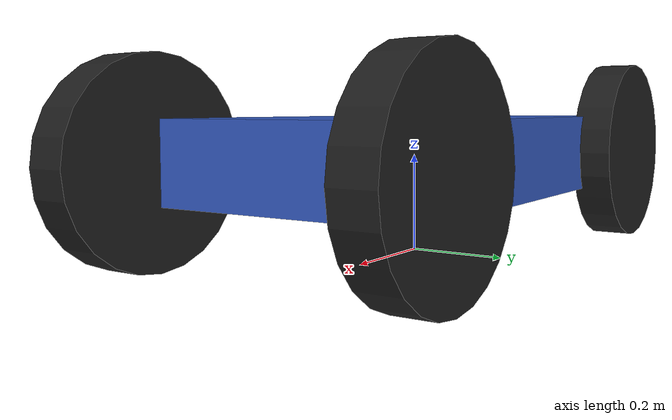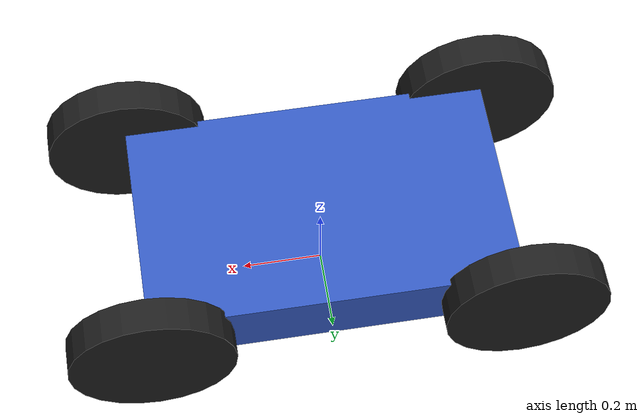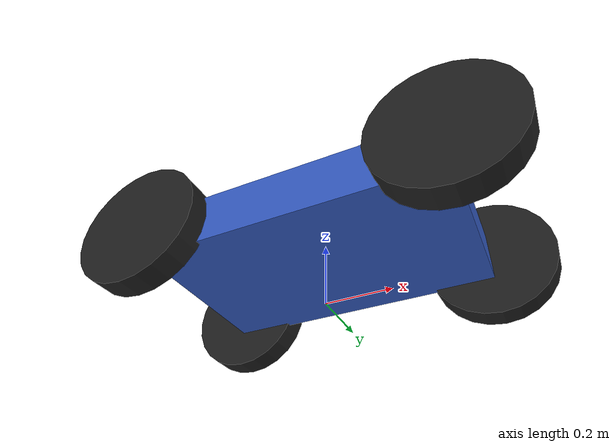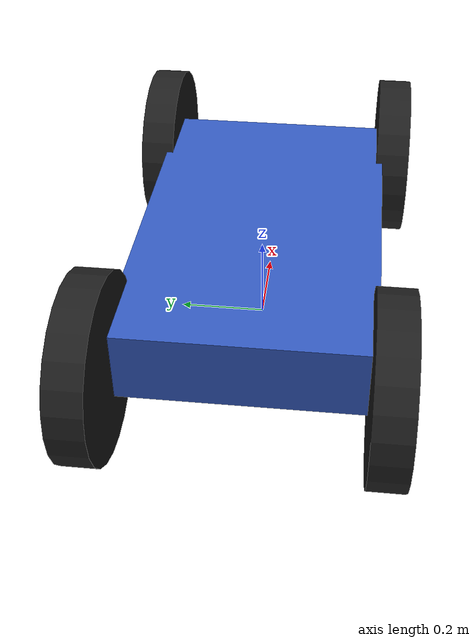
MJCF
<mujoco model="rolling_4s">
  <compiler angle="radian" inertiafromgeom="false"/>
  <option timestep="0.001" gravity="0 0 -9.81" integrator="implicitfast" cone="pyramidal" jacobian="dense"/>
  <size memory="64M"/>
  <default>
    <joint damping="0.05" armature="0.001"/>
    <geom condim="4" friction="0.8 0.01 0.001" solref="0.01 1" solimp="0.9 0.95 0.001"/>
  </default>
  <worldbody>
    <body name="chassis" pos="0 0 0.2">
      <freejoint name="root"/>
      <inertial pos="0 0 0.08" mass="18" diaginertia="0.75 1.35 1.75"/>
      <geom name="chassis_visual" type="box" size="0.45 0.275 0.08" contype="0" conaffinity="0"
            rgba="0.2 0.35 0.75 1"/>
      <geom name="chassis_collision" type="box" size="0.36 0.20 0.06" rgba="0.2 0.35 0.75 0"/>

      <body name="front_left_knuckle" pos="0.45 0.3 0">
        <joint name="front_left_steer" type="hinge" axis="0 0 1" damping="0.001" limited="true"
               range="-3.141592653589793 3.141592653589793"/>
        <inertial pos="0 0 0" mass="0.3" diaginertia="0.002 0.002 0.002"/>
        <body name="front_left_wheel">
          <joint name="front_left_drive" type="hinge" axis="0 1 0" damping="0.05" limited="false"/>
          <inertial pos="0 0 0" mass="1" diaginertia="0.021 0.040 0.021"/>
          <geom name="front_left_wheel_collision" type="cylinder" size="0.2 0.04"
                quat="0.7071067811865476 0.7071067811865476 0 0" rgba="0.12 0.12 0.12 1"/>
        </body>
      </body>

      <body name="front_right_knuckle" pos="0.45 -0.3 0">
        <joint name="front_right_steer" type="hinge" axis="0 0 1" damping="0.001" limited="true"
               range="-3.141592653589793 3.141592653589793"/>
        <inertial pos="0 0 0" mass="0.3" diaginertia="0.002 0.002 0.002"/>
        <body name="front_right_wheel">
          <joint name="front_right_drive" type="hinge" axis="0 1 0" damping="0.05" limited="false"/>
          <inertial pos="0 0 0" mass="1" diaginertia="0.021 0.040 0.021"/>
          <geom name="front_right_wheel_collision" type="cylinder" size="0.2 0.04"
                quat="0.7071067811865476 0.7071067811865476 0 0" rgba="0.12 0.12 0.12 1"/>
        </body>
      </body>

      <body name="rear_left_knuckle" pos="-0.45 0.3 0">
        <joint name="rear_left_steer" type="hinge" axis="0 0 1" damping="0.001" limited="true"
               range="-3.141592653589793 3.141592653589793"/>
        <inertial pos="0 0 0" mass="0.3" diaginertia="0.002 0.002 0.002"/>
        <body name="rear_left_wheel">
          <joint name="rear_left_drive" type="hinge" axis="0 1 0" damping="0.05" limited="false"/>
          <inertial pos="0 0 0" mass="1" diaginertia="0.021 0.040 0.021"/>
          <geom name="rear_left_wheel_collision" type="cylinder" size="0.2 0.04"
                quat="0.7071067811865476 0.7071067811865476 0 0" rgba="0.12 0.12 0.12 1"/>
        </body>
      </body>

      <body name="rear_right_knuckle" pos="-0.45 -0.3 0">
        <joint name="rear_right_steer" type="hinge" axis="0 0 1" damping="0.001" limited="true"
               range="-3.141592653589793 3.141592653589793"/>
        <inertial pos="0 0 0" mass="0.3" diaginertia="0.002 0.002 0.002"/>
        <body name="rear_right_wheel">
          <joint name="rear_right_drive" type="hinge" axis="0 1 0" damping="0.05" limited="false"/>
          <inertial pos="0 0 0" mass="1" diaginertia="0.021 0.040 0.021"/>
          <geom name="rear_right_wheel_collision" type="cylinder" size="0.2 0.04"
                quat="0.7071067811865476 0.7071067811865476 0 0" rgba="0.12 0.12 0.12 1"/>
        </body>
      </body>
    </body>
  </worldbody>
  <actuator>
    <motor name="front_left_steer_motor" joint="front_left_steer" gear="1" ctrllimited="true" ctrlrange="-25 25"/>
    <motor name="front_left_drive_motor" joint="front_left_drive" gear="1" ctrllimited="true" ctrlrange="-35 35"/>
    <motor name="front_right_steer_motor" joint="front_right_steer" gear="1" ctrllimited="true" ctrlrange="-25 25"/>
    <motor name="front_right_drive_motor" joint="front_right_drive" gear="1" ctrllimited="true" ctrlrange="-35 35"/>
    <motor name="rear_left_steer_motor" joint="rear_left_steer" gear="1" ctrllimited="true" ctrlrange="-25 25"/>
    <motor name="rear_left_drive_motor" joint="rear_left_drive" gear="1" ctrllimited="true" ctrlrange="-35 35"/>
    <motor name="rear_right_steer_motor" joint="rear_right_steer" gear="1" ctrllimited="true" ctrlrange="-25 25"/>
    <motor name="rear_right_drive_motor" joint="rear_right_drive" gear="1" ctrllimited="true" ctrlrange="-35 35"/>
  </actuator>
</mujoco>
